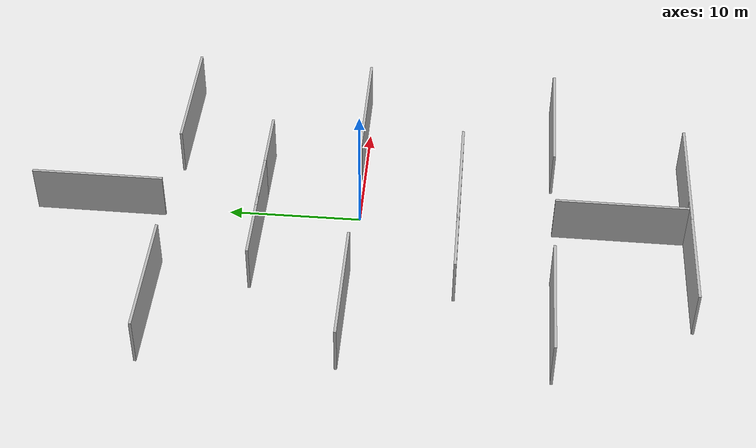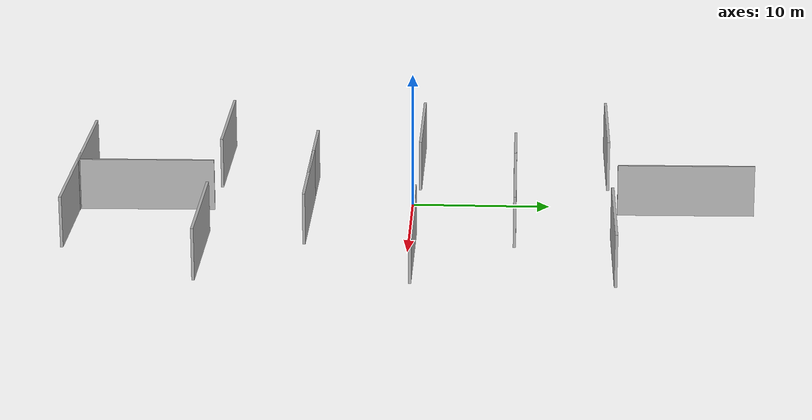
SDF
<sdf version="1.10">
 <world name="world_demo">
  <gravity>0 0 -9.8000000000000007</gravity>
  <physics type="ode">
   <max_step_size>0.01</max_step_size>
   <real_time_factor>1</real_time_factor>
   <real_time_update_rate>1000</real_time_update_rate>
  </physics>
  <plugin name="ignition::gazebo::systems::Physics" filename="libignition-gazebo-physics-system.so"/>
  <plugin name="ignition::gazebo::systems::UserCommands" filename="libignition-gazebo-user-commands-system.so"/>
  <plugin name="ignition::gazebo::systems::SceneBroadcaster" filename="libignition-gazebo-scene-broadcaster-system.so"/>
  <plugin name="ignition::gazebo::systems::Imu" filename="libignition-gazebo-imu-system.so"/>
  <scene>
   <ambient>1 1 1 1</ambient>
   <background>0.300000012 0.699999988 0.899999976 1</background>
   <shadows>false</shadows>
   <grid>false</grid>
  </scene>
  <magnetic_field>5.5644999999999998e-06 2.2875799999999999e-05 -4.2388400000000002e-05</magnetic_field>
  <atmosphere type="adiabatic"/>
  <model name="ground_plane">
   <static>true</static>
   <link name="link">
    <collision name="collision">
     <geometry><plane><normal>0 0 1</normal><size>1 1</size></plane></geometry>
    </collision>
    <inertial>
     <mass>1</mass>
     <inertia><ixx>1</ixx><ixy>0</ixy><ixz>0</ixz><iyy>1</iyy><iyz>0</iyz><izz>1</izz></inertia>
    </inertial>
   </link>
  </model>
  <model name="cutout_wall">
   <static>true</static>
   <link name="link">
    <pose>0 0 1.3999999999999999 0 0 0</pose>
    <collision name="collision">
     <geometry><box><size>10 0.20000000000000001 3.7999999999999998</size></box></geometry>
     <surface>
      <contact>
       <collide_without_contact>true</collide_without_contact>
       <collide_without_contact_bitmask>2</collide_without_contact_bitmask>
      </contact>
     </surface>
    </collision>
    <visual name="visual">
     <cast_shadows>false</cast_shadows>
     <geometry><box><size>10 0.20000000000000001 3.7999999999999998</size></box></geometry>
     <material>
      <script>
       <uri>https://fuel.gazebosim.org/1.0/openrobotics/models/cutout wall/2/files/materials/scripts</uri>
       <uri>https://fuel.gazebosim.org/1.0/openrobotics/models/cutout wall/2/files/materials/textures</uri>
       <name>drc_practice/cutout_wall</name>
      </script>
     </material>
    </visual>
    <sensor name="mud_contact" type="contact">
     <always_on>true</always_on>
     <update_rate>1000</update_rate>
     <contact><collision>collision</collision><topic>__default_topic__</topic></contact>
    </sensor>
    <inertial>
     <mass>1</mass>
     <inertia><ixx>1</ixx><ixy>0</ixy><ixz>0</ixz><iyy>1</iyy><iyz>0</iyz><izz>1</izz></inertia>
    </inertial>
   </link>
   <plugin name="gazebo_mud" filename="libMudPlugin.so">
    <contact_sensor_name>link/mud_contact</contact_sensor_name>
    <stiffness>0.0</stiffness>
    <damping>40.0</damping>
    <contact_surface_bitmask>2</contact_surface_bitmask>
    <link_name>drill::link</link_name>
   </plugin>
   <pose>2.4493985176086426 7.5163202285766602 0 0 0 0</pose>
  </model>
  <model name="cutout_wall_0">
   <static>true</static>
   <link name="link">
    <pose>0 0 1.3999999999999999 0 0 0</pose>
    <collision name="collision">
     <geometry><box><size>10 0.20000000000000001 3.7999999999999998</size></box></geometry>
     <surface>
      <contact>
       <collide_without_contact>true</collide_without_contact>
       <collide_without_contact_bitmask>2</collide_without_contact_bitmask>
      </contact>
     </surface>
    </collision>
    <visual name="visual">
     <cast_shadows>false</cast_shadows>
     <geometry><box><size>10 0.20000000000000001 3.7999999999999998</size></box></geometry>
     <material>
      <script>
       <uri>https://fuel.gazebosim.org/1.0/openrobotics/models/cutout wall/2/files/materials/scripts</uri>
       <uri>https://fuel.gazebosim.org/1.0/openrobotics/models/cutout wall/2/files/materials/textures</uri>
       <name>drc_practice/cutout_wall</name>
      </script>
     </material>
    </visual>
    <sensor name="mud_contact" type="contact">
     <always_on>true</always_on>
     <update_rate>1000</update_rate>
     <contact><collision>collision</collision><topic>__default_topic__</topic></contact>
    </sensor>
    <inertial>
     <mass>1</mass>
     <inertia><ixx>1</ixx><ixy>0</ixy><ixz>0</ixz><iyy>1</iyy><iyz>0</iyz><izz>1</izz></inertia>
    </inertial>
   </link>
   <plugin name="gazebo_mud" filename="libMudPlugin.so">
    <contact_sensor_name>link/mud_contact</contact_sensor_name>
    <stiffness>0.0</stiffness>
    <damping>40.0</damping>
    <contact_surface_bitmask>2</contact_surface_bitmask>
    <link_name>drill::link</link_name>
   </plugin>
   <pose>-2.4651939868927002 7.5077400207519531 0 0 0 0</pose>
  </model>
  <model name="cutout_wall_1">
   <static>true</static>
   <link name="link">
    <pose>0 0 1.3999999999999999 0 0 0</pose>
    <collision name="collision">
     <geometry><box><size>10 0.20000000000000001 3.7999999999999998</size></box></geometry>
     <surface>
      <contact>
       <collide_without_contact>true</collide_without_contact>
       <collide_without_contact_bitmask>2</collide_without_contact_bitmask>
      </contact>
     </surface>
    </collision>
    <visual name="visual">
     <cast_shadows>false</cast_shadows>
     <geometry><box><size>10 0.20000000000000001 3.7999999999999998</size></box></geometry>
     <material>
      <script>
       <uri>https://fuel.gazebosim.org/1.0/openrobotics/models/cutout wall/2/files/materials/scripts</uri>
       <uri>https://fuel.gazebosim.org/1.0/openrobotics/models/cutout wall/2/files/materials/textures</uri>
       <name>drc_practice/cutout_wall</name>
      </script>
     </material>
    </visual>
    <sensor name="mud_contact" type="contact">
     <always_on>true</always_on>
     <update_rate>1000</update_rate>
     <contact><collision>collision</collision><topic>__default_topic__</topic></contact>
    </sensor>
    <inertial>
     <mass>1</mass>
     <inertia><ixx>1</ixx><ixy>0</ixy><ixz>0</ixz><iyy>1</iyy><iyz>0</iyz><izz>1</izz></inertia>
    </inertial>
   </link>
   <plugin name="gazebo_mud" filename="libMudPlugin.so">
    <contact_sensor_name>link/mud_contact</contact_sensor_name>
    <stiffness>0.0</stiffness>
    <damping>40.0</damping>
    <contact_surface_bitmask>2</contact_surface_bitmask>
    <link_name>drill::link</link_name>
   </plugin>
   <pose>9.9698162078857422 0.35239198803901672 0 0 0 0</pose>
  </model>
  <model name="cutout_wall_2">
   <static>true</static>
   <link name="link">
    <pose>0 0 1.3999999999999999 0 0 0</pose>
    <collision name="collision">
     <geometry><box><size>10 0.20000000000000001 3.7999999999999998</size></box></geometry>
     <surface>
      <contact>
       <collide_without_contact>true</collide_without_contact>
       <collide_without_contact_bitmask>2</collide_without_contact_bitmask>
      </contact>
     </surface>
    </collision>
    <visual name="visual">
     <cast_shadows>false</cast_shadows>
     <geometry><box><size>10 0.20000000000000001 3.7999999999999998</size></box></geometry>
     <material>
      <script>
       <uri>https://fuel.gazebosim.org/1.0/openrobotics/models/cutout wall/2/files/materials/scripts</uri>
       <uri>https://fuel.gazebosim.org/1.0/openrobotics/models/cutout wall/2/files/materials/textures</uri>
       <name>drc_practice/cutout_wall</name>
      </script>
     </material>
    </visual>
    <sensor name="mud_contact" type="contact">
     <always_on>true</always_on>
     <update_rate>1000</update_rate>
     <contact><collision>collision</collision><topic>__default_topic__</topic></contact>
    </sensor>
    <inertial>
     <mass>1</mass>
     <inertia><ixx>1</ixx><ixy>0</ixy><ixz>0</ixz><iyy>1</iyy><iyz>0</iyz><izz>1</izz></inertia>
    </inertial>
   </link>
   <plugin name="gazebo_mud" filename="libMudPlugin.so">
    <contact_sensor_name>link/mud_contact</contact_sensor_name>
    <stiffness>0.0</stiffness>
    <damping>40.0</damping>
    <contact_surface_bitmask>2</contact_surface_bitmask>
    <link_name>drill::link</link_name>
   </plugin>
   <pose>-9.8927936553955078 0.36858600378036499 0 0 0 0</pose>
  </model>
  <model name="cutout_wall_3">
   <static>true</static>
   <link name="link">
    <pose>0 0 1.3999999999999999 0 0 0</pose>
    <collision name="collision">
     <geometry><box><size>10 0.20000000000000001 3.7999999999999998</size></box></geometry>
     <surface>
      <contact>
       <collide_without_contact>true</collide_without_contact>
       <collide_without_contact_bitmask>2</collide_without_contact_bitmask>
      </contact>
     </surface>
    </collision>
    <visual name="visual">
     <cast_shadows>false</cast_shadows>
     <geometry><box><size>10 0.20000000000000001 3.7999999999999998</size></box></geometry>
     <material>
      <script>
       <uri>https://fuel.gazebosim.org/1.0/openrobotics/models/cutout wall/2/files/materials/scripts</uri>
       <uri>https://fuel.gazebosim.org/1.0/openrobotics/models/cutout wall/2/files/materials/textures</uri>
       <name>drc_practice/cutout_wall</name>
      </script>
     </material>
    </visual>
    <sensor name="mud_contact" type="contact">
     <always_on>true</always_on>
     <update_rate>1000</update_rate>
     <contact><collision>collision</collision><topic>__default_topic__</topic></contact>
    </sensor>
    <inertial>
     <mass>1</mass>
     <inertia><ixx>1</ixx><ixy>0</ixy><ixz>0</ixz><iyy>1</iyy><iyz>0</iyz><izz>1</izz></inertia>
    </inertial>
   </link>
   <plugin name="gazebo_mud" filename="libMudPlugin.so">
    <contact_sensor_name>link/mud_contact</contact_sensor_name>
    <stiffness>0.0</stiffness>
    <damping>40.0</damping>
    <contact_surface_bitmask>2</contact_surface_bitmask>
    <link_name>drill::link</link_name>
   </plugin>
   <pose>2.3382878303527832 -7.510159969329834 0 0 0 0</pose>
  </model>
  <model name="cutout_wall_4">
   <static>true</static>
   <link name="link">
    <pose>0 0 1.3999999999999999 0 0 0</pose>
    <collision name="collision">
     <geometry><box><size>10 0.20000000000000001 3.7999999999999998</size></box></geometry>
     <surface>
      <contact>
       <collide_without_contact>true</collide_without_contact>
       <collide_without_contact_bitmask>2</collide_without_contact_bitmask>
      </contact>
     </surface>
    </collision>
    <visual name="visual">
     <cast_shadows>false</cast_shadows>
     <geometry><box><size>10 0.20000000000000001 3.7999999999999998</size></box></geometry>
     <material>
      <script>
       <uri>https://fuel.gazebosim.org/1.0/openrobotics/models/cutout wall/2/files/materials/scripts</uri>
       <uri>https://fuel.gazebosim.org/1.0/openrobotics/models/cutout wall/2/files/materials/textures</uri>
       <name>drc_practice/cutout_wall</name>
      </script>
     </material>
    </visual>
    <sensor name="mud_contact" type="contact">
     <always_on>true</always_on>
     <update_rate>1000</update_rate>
     <contact><collision>collision</collision><topic>__default_topic__</topic></contact>
    </sensor>
    <inertial>
     <mass>1</mass>
     <inertia><ixx>1</ixx><ixy>0</ixy><ixz>0</ixz><iyy>1</iyy><iyz>0</iyz><izz>1</izz></inertia>
    </inertial>
   </link>
   <plugin name="gazebo_mud" filename="libMudPlugin.so">
    <contact_sensor_name>link/mud_contact</contact_sensor_name>
    <stiffness>0.0</stiffness>
    <damping>40.0</damping>
    <contact_surface_bitmask>2</contact_surface_bitmask>
    <link_name>drill::link</link_name>
   </plugin>
   <pose>-2.5318973064422607 -7.5166702270507812 0 0 0 0</pose>
  </model>
  <model name="cutout_wall_5">
   <static>true</static>
   <link name="link">
    <pose>0 0 1.3999999999999999 0 0 0</pose>
    <collision name="collision">
     <geometry><box><size>10 0.20000000000000001 3.7999999999999998</size></box></geometry>
     <surface>
      <contact>
       <collide_without_contact>true</collide_without_contact>
       <collide_without_contact_bitmask>2</collide_without_contact_bitmask>
      </contact>
     </surface>
    </collision>
    <visual name="visual">
     <cast_shadows>false</cast_shadows>
     <geometry><box><size>10 0.20000000000000001 3.7999999999999998</size></box></geometry>
     <material>
      <script>
       <uri>https://fuel.gazebosim.org/1.0/openrobotics/models/cutout wall/2/files/materials/scripts</uri>
       <uri>https://fuel.gazebosim.org/1.0/openrobotics/models/cutout wall/2/files/materials/textures</uri>
       <name>drc_practice/cutout_wall</name>
      </script>
     </material>
    </visual>
    <sensor name="mud_contact" type="contact">
     <always_on>true</always_on>
     <update_rate>1000</update_rate>
     <contact><collision>collision</collision><topic>__default_topic__</topic></contact>
    </sensor>
    <inertial>
     <mass>1</mass>
     <inertia><ixx>1</ixx><ixy>0</ixy><ixz>0</ixz><iyy>1</iyy><iyz>0</iyz><izz>1</izz></inertia>
    </inertial>
   </link>
   <plugin name="gazebo_mud" filename="libMudPlugin.so">
    <contact_sensor_name>link/mud_contact</contact_sensor_name>
    <stiffness>0.0</stiffness>
    <damping>40.0</damping>
    <contact_surface_bitmask>2</contact_surface_bitmask>
    <link_name>drill::link</link_name>
   </plugin>
   <pose>3.690619945526123 -24.711381912231445 0 0 0 0</pose>
  </model>
  <model name="cutout_wall_6">
   <static>true</static>
   <link name="link">
    <pose>0 0 1.3999999999999999 0 0 0</pose>
    <collision name="collision">
     <geometry><box><size>10 0.20000000000000001 3.7999999999999998</size></box></geometry>
     <surface>
      <contact>
       <collide_without_contact>true</collide_without_contact>
       <collide_without_contact_bitmask>2</collide_without_contact_bitmask>
      </contact>
     </surface>
    </collision>
    <visual name="visual">
     <cast_shadows>false</cast_shadows>
     <geometry><box><size>10 0.20000000000000001 3.7999999999999998</size></box></geometry>
     <material>
      <script>
       <uri>https://fuel.gazebosim.org/1.0/openrobotics/models/cutout wall/2/files/materials/scripts</uri>
       <uri>https://fuel.gazebosim.org/1.0/openrobotics/models/cutout wall/2/files/materials/textures</uri>
       <name>drc_practice/cutout_wall</name>
      </script>
     </material>
    </visual>
    <sensor name="mud_contact" type="contact">
     <always_on>true</always_on>
     <update_rate>1000</update_rate>
     <contact><collision>collision</collision><topic>__default_topic__</topic></contact>
    </sensor>
    <inertial>
     <mass>1</mass>
     <inertia><ixx>1</ixx><ixy>0</ixy><ixz>0</ixz><iyy>1</iyy><iyz>0</iyz><izz>1</izz></inertia>
    </inertial>
   </link>
   <plugin name="gazebo_mud" filename="libMudPlugin.so">
    <contact_sensor_name>link/mud_contact</contact_sensor_name>
    <stiffness>0.0</stiffness>
    <damping>40.0</damping>
    <contact_surface_bitmask>2</contact_surface_bitmask>
    <link_name>drill::link</link_name>
   </plugin>
   <pose>-4.3290905952453613 -24.693399429321289 0 0 0 0</pose>
  </model>
  <model name="cutout_wall_7">
   <static>true</static>
   <link name="link">
    <pose>0 0 1.3999999999999999 0 0 0</pose>
    <collision name="collision">
     <geometry><box><size>10 0.20000000000000001 3.7999999999999998</size></box></geometry>
     <surface>
      <contact>
       <collide_without_contact>true</collide_without_contact>
       <collide_without_contact_bitmask>2</collide_without_contact_bitmask>
      </contact>
     </surface>
    </collision>
    <visual name="visual">
     <cast_shadows>false</cast_shadows>
     <geometry><box><size>10 0.20000000000000001 3.7999999999999998</size></box></geometry>
     <material>
      <script>
       <uri>https://fuel.gazebosim.org/1.0/openrobotics/models/cutout wall/2/files/materials/scripts</uri>
       <uri>https://fuel.gazebosim.org/1.0/openrobotics/models/cutout wall/2/files/materials/textures</uri>
       <name>drc_practice/cutout_wall</name>
      </script>
     </material>
    </visual>
    <sensor name="mud_contact" type="contact">
     <always_on>true</always_on>
     <update_rate>1000</update_rate>
     <contact><collision>collision</collision><topic>__default_topic__</topic></contact>
    </sensor>
    <inertial>
     <mass>1</mass>
     <inertia><ixx>1</ixx><ixy>0</ixy><ixz>0</ixz><iyy>1</iyy><iyz>0</iyz><izz>1</izz></inertia>
    </inertial>
   </link>
   <plugin name="gazebo_mud" filename="libMudPlugin.so">
    <contact_sensor_name>link/mud_contact</contact_sensor_name>
    <stiffness>0.0</stiffness>
    <damping>40.0</damping>
    <contact_surface_bitmask>2</contact_surface_bitmask>
    <link_name>drill::link</link_name>
   </plugin>
   <pose>9.885319709777832 -14.618639945983887 0 0 0 0</pose>
  </model>
  <model name="cutout_wall_8">
   <static>true</static>
   <link name="link">
    <pose>0 0 1.3999999999999999 0 0 0</pose>
    <collision name="collision">
     <geometry><box><size>10 0.20000000000000001 3.7999999999999998</size></box></geometry>
     <surface>
      <contact>
       <collide_without_contact>true</collide_without_contact>
       <collide_without_contact_bitmask>2</collide_without_contact_bitmask>
      </contact>
     </surface>
    </collision>
    <visual name="visual">
     <cast_shadows>false</cast_shadows>
     <geometry><box><size>10 0.20000000000000001 3.7999999999999998</size></box></geometry>
     <material>
      <script>
       <uri>https://fuel.gazebosim.org/1.0/openrobotics/models/cutout wall/2/files/materials/scripts</uri>
       <uri>https://fuel.gazebosim.org/1.0/openrobotics/models/cutout wall/2/files/materials/textures</uri>
       <name>drc_practice/cutout_wall</name>
      </script>
     </material>
    </visual>
    <sensor name="mud_contact" type="contact">
     <always_on>true</always_on>
     <update_rate>1000</update_rate>
     <contact><collision>collision</collision><topic>__default_topic__</topic></contact>
    </sensor>
    <inertial>
     <mass>1</mass>
     <inertia><ixx>1</ixx><ixy>0</ixy><ixz>0</ixz><iyy>1</iyy><iyz>0</iyz><izz>1</izz></inertia>
    </inertial>
   </link>
   <plugin name="gazebo_mud" filename="libMudPlugin.so">
    <contact_sensor_name>link/mud_contact</contact_sensor_name>
    <stiffness>0.0</stiffness>
    <damping>40.0</damping>
    <contact_surface_bitmask>2</contact_surface_bitmask>
    <link_name>drill::link</link_name>
   </plugin>
   <pose>-9.9743938446044922 -14.626399993896484 0 0 0 0</pose>
  </model>
  <model name="cutout_wall_9">
   <static>true</static>
   <link name="link">
    <pose>0 0 1.3999999999999999 0 0 0</pose>
    <collision name="collision">
     <geometry><box><size>10 0.20000000000000001 3.7999999999999998</size></box></geometry>
     <surface>
      <contact>
       <collide_without_contact>true</collide_without_contact>
       <collide_without_contact_bitmask>2</collide_without_contact_bitmask>
      </contact>
     </surface>
    </collision>
    <visual name="visual">
     <cast_shadows>false</cast_shadows>
     <geometry><box><size>10 0.20000000000000001 3.7999999999999998</size></box></geometry>
     <material>
      <script>
       <uri>https://fuel.gazebosim.org/1.0/openrobotics/models/cutout wall/2/files/materials/scripts</uri>
       <uri>https://fuel.gazebosim.org/1.0/openrobotics/models/cutout wall/2/files/materials/textures</uri>
       <name>drc_practice/cutout_wall</name>
      </script>
     </material>
    </visual>
    <sensor name="mud_contact" type="contact">
     <always_on>true</always_on>
     <update_rate>1000</update_rate>
     <contact><collision>collision</collision><topic>__default_topic__</topic></contact>
    </sensor>
    <inertial>
     <mass>1</mass>
     <inertia><ixx>1</ixx><ixy>0</ixy><ixz>0</ixz><iyy>1</iyy><iyz>0</iyz><izz>1</izz></inertia>
    </inertial>
   </link>
   <plugin name="gazebo_mud" filename="libMudPlugin.so">
    <contact_sensor_name>link/mud_contact</contact_sensor_name>
    <stiffness>0.0</stiffness>
    <damping>40.0</damping>
    <contact_surface_bitmask>2</contact_surface_bitmask>
    <link_name>drill::link</link_name>
   </plugin>
   <pose>0.02622597787120956 -19.657367705852387 -0.034373451041267877 0.030380599774402058 0.0053940497030883824 -1.5714600240762675</pose>
  </model>
  <model name="cutout_wall_10">
   <static>true</static>
   <link name="link">
    <pose>0 0 1.3999999999999999 0 0 0</pose>
    <collision name="collision">
     <geometry><box><size>10 0.20000000000000001 3.7999999999999998</size></box></geometry>
     <surface>
      <contact>
       <collide_without_contact>true</collide_without_contact>
       <collide_without_contact_bitmask>2</collide_without_contact_bitmask>
      </contact>
     </surface>
    </collision>
    <visual name="visual">
     <cast_shadows>false</cast_shadows>
     <geometry><box><size>10 0.20000000000000001 3.7999999999999998</size></box></geometry>
     <material>
      <script>
       <uri>https://fuel.gazebosim.org/1.0/openrobotics/models/cutout wall/2/files/materials/scripts</uri>
       <uri>https://fuel.gazebosim.org/1.0/openrobotics/models/cutout wall/2/files/materials/textures</uri>
       <name>drc_practice/cutout_wall</name>
      </script>
     </material>
    </visual>
    <sensor name="mud_contact" type="contact">
     <always_on>true</always_on>
     <update_rate>1000</update_rate>
     <contact><collision>collision</collision><topic>__default_topic__</topic></contact>
    </sensor>
    <inertial>
     <mass>1</mass>
     <inertia><ixx>1</ixx><ixy>0</ixy><ixz>0</ixz><iyy>1</iyy><iyz>0</iyz><izz>1</izz></inertia>
    </inertial>
   </link>
   <plugin name="gazebo_mud" filename="libMudPlugin.so">
    <contact_sensor_name>link/mud_contact</contact_sensor_name>
    <stiffness>0.0</stiffness>
    <damping>40.0</damping>
    <contact_surface_bitmask>2</contact_surface_bitmask>
    <link_name>drill::link</link_name>
   </plugin>
   <pose>-10.32759952545166 14.47736930847168 0 0 0 0</pose>
  </model>
  <model name="cutout_wall_11">
   <static>true</static>
   <link name="link">
    <pose>0 0 1.3999999999999999 0 0 0</pose>
    <collision name="collision">
     <geometry><box><size>10 0.20000000000000001 3.7999999999999998</size></box></geometry>
     <surface>
      <contact>
       <collide_without_contact>true</collide_without_contact>
       <collide_without_contact_bitmask>2</collide_without_contact_bitmask>
      </contact>
     </surface>
    </collision>
    <visual name="visual">
     <cast_shadows>false</cast_shadows>
     <geometry><box><size>10 0.20000000000000001 3.7999999999999998</size></box></geometry>
     <material>
      <script>
       <uri>https://fuel.gazebosim.org/1.0/openrobotics/models/cutout wall/2/files/materials/scripts</uri>
       <uri>https://fuel.gazebosim.org/1.0/openrobotics/models/cutout wall/2/files/materials/textures</uri>
       <name>drc_practice/cutout_wall</name>
      </script>
     </material>
    </visual>
    <sensor name="mud_contact" type="contact">
     <always_on>true</always_on>
     <update_rate>1000</update_rate>
     <contact><collision>collision</collision><topic>__default_topic__</topic></contact>
    </sensor>
    <inertial>
     <mass>1</mass>
     <inertia><ixx>1</ixx><ixy>0</ixy><ixz>0</ixz><iyy>1</iyy><iyz>0</iyz><izz>1</izz></inertia>
    </inertial>
   </link>
   <plugin name="gazebo_mud" filename="libMudPlugin.so">
    <contact_sensor_name>link/mud_contact</contact_sensor_name>
    <stiffness>0.0</stiffness>
    <damping>40.0</damping>
    <contact_surface_bitmask>2</contact_surface_bitmask>
    <link_name>drill::link</link_name>
   </plugin>
   <pose>10.123049736022949 14.49899959564209 0 0 0 0</pose>
  </model>
  <model name="cutout_wall_9_1">
   <static>true</static>
   <link name="link">
    <pose>0 0 1.3999999999999999 0 0 0</pose>
    <collision name="collision">
     <geometry><box><size>10 0.20000000000000001 3.7999999999999998</size></box></geometry>
     <surface>
      <contact>
       <collide_without_contact>true</collide_without_contact>
       <collide_without_contact_bitmask>2</collide_without_contact_bitmask>
      </contact>
     </surface>
    </collision>
    <visual name="visual">
     <cast_shadows>false</cast_shadows>
     <geometry><box><size>10 0.20000000000000001 3.7999999999999998</size></box></geometry>
     <material>
      <script>
       <uri>https://fuel.gazebosim.org/1.0/openrobotics/models/cutout wall/2/files/materials/scripts</uri>
       <uri>https://fuel.gazebosim.org/1.0/openrobotics/models/cutout wall/2/files/materials/textures</uri>
       <name>drc_practice/cutout_wall</name>
      </script>
     </material>
    </visual>
    <sensor name="mud_contact" type="contact">
     <always_on>true</always_on>
     <update_rate>1000</update_rate>
     <contact><collision>collision</collision><topic>__default_topic__</topic></contact>
    </sensor>
   </link>
   <plugin name="gazebo_mud" filename="libMudPlugin.so">
    <contact_sensor_name>link/mud_contact</contact_sensor_name>
    <stiffness>0.0</stiffness>
    <damping>40.0</damping>
    <contact_surface_bitmask>2</contact_surface_bitmask>
    <link_name>drill::link</link_name>
   </plugin>
   <pose>-0.048170783747051346 20.040464541002077 -0.034373499461554324 0.030380599774402058 0.0053940497030883824 -1.5714600240762675</pose>
  </model>
  <light name="sun" type="directional">
   <pose>-5 -3 10 0 0 0</pose>
   <cast_shadows>false</cast_shadows>
   <intensity>1</intensity>
   <direction>0 0 -1</direction>
   <diffuse>1 1 1 1</diffuse>
   <specular>1 1 1 1</specular>
   <attenuation><range>10</range><linear>1</linear><constant>1</constant><quadratic>0</quadratic></attenuation>
   <spot><inner_angle>0</inner_angle><outer_angle>0</outer_angle><falloff>0</falloff></spot>
  </light>
 </world>
</sdf>
